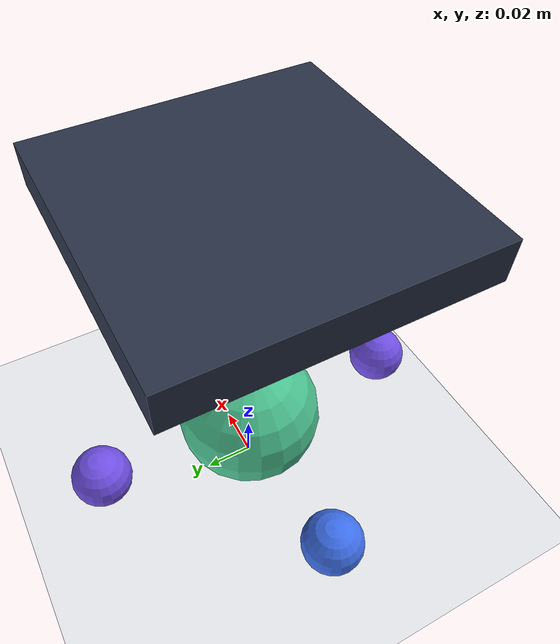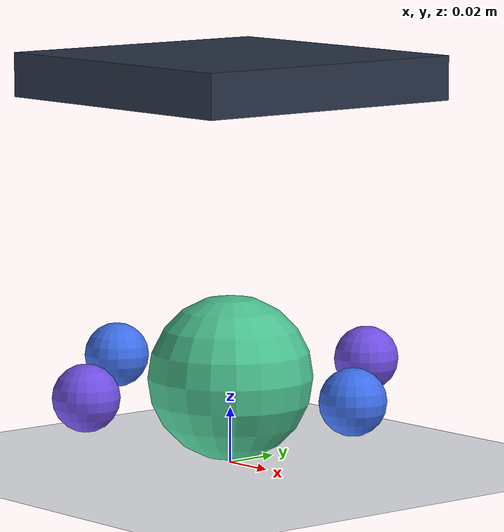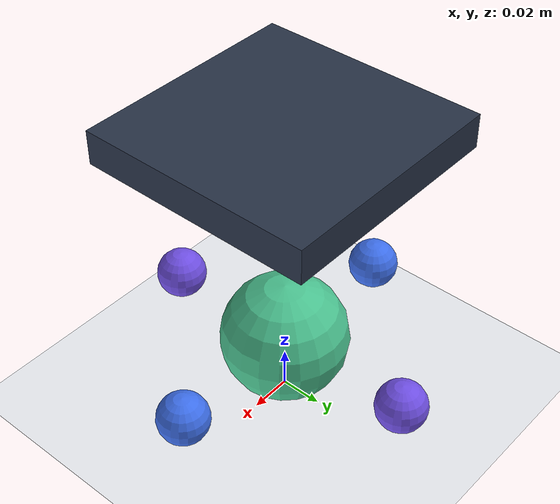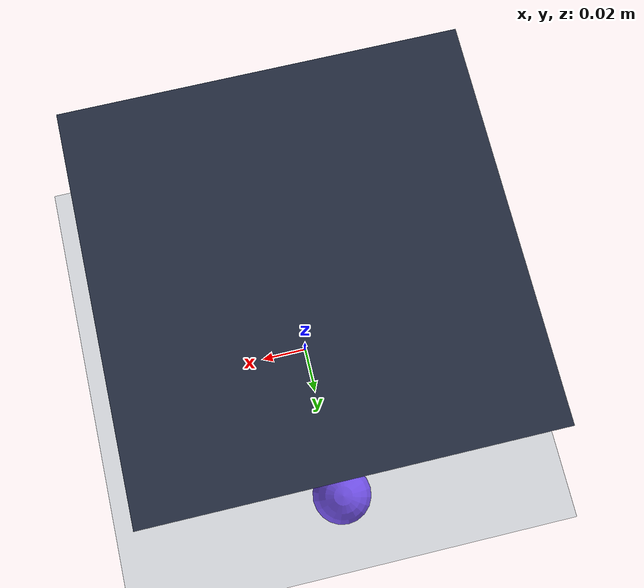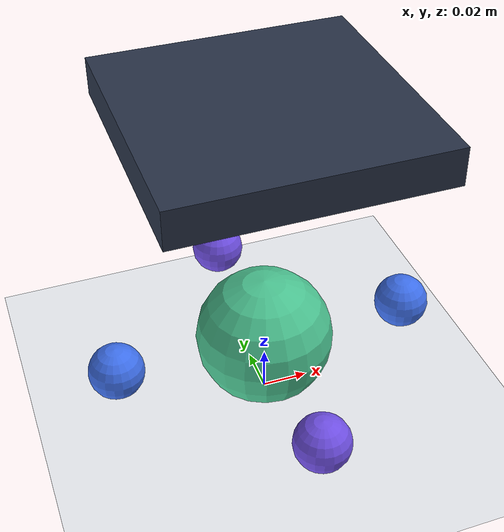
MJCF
<mujoco model="dexterous grasp smoke">
  <compiler angle="radian"/>
  <option timestep="0.002" gravity="0 0 -9.81" integrator="implicitfast" cone="elliptic"/>

  <default>
    <joint damping="1" armature="0.002"/>
    <geom solref="0.004 1" solimp="0.95 0.99 0.001" condim="4" friction="1.0 0.01 0.001"/>
    <position kp="120" kv="8" ctrllimited="true"/>
  </default>

  <worldbody>
    <light pos="0 -0.6 0.8" dir="0 0.5 -1" directional="true"/>
    <geom name="floor" type="plane" size="0.4 0.4 0.02" rgba="0.93 0.94 0.96 1" friction="0.9 0.01 0.001"/>

    <body name="palm" pos="0 0 0.14">
      <joint name="wrist_lift" type="slide" axis="0 0 1" range="0 0.09"/>
      <geom name="palm_geom" type="box" size="0.055 0.055 0.008" rgba="0.16 0.20 0.28 1" contype="0" conaffinity="0"/>

      <body name="finger_left" pos="0.066 0 -0.109">
        <joint name="finger_left_close" type="slide" axis="-1 0 0" range="0 0.034"/>
        <geom name="finger_left_tip" type="sphere" size="0.012" rgba="0.25 0.45 0.95 1"/>
      </body>
      <body name="finger_right" pos="-0.066 0 -0.109">
        <joint name="finger_right_close" type="slide" axis="1 0 0" range="0 0.034"/>
        <geom name="finger_right_tip" type="sphere" size="0.012" rgba="0.25 0.45 0.95 1"/>
      </body>
      <body name="finger_front" pos="0 -0.066 -0.109">
        <joint name="finger_front_close" type="slide" axis="0 1 0" range="0 0.034"/>
        <geom name="finger_front_tip" type="sphere" size="0.012" rgba="0.45 0.32 0.92 1"/>
      </body>
      <body name="finger_back" pos="0 0.066 -0.109">
        <joint name="finger_back_close" type="slide" axis="0 -1 0" range="0 0.034"/>
        <geom name="finger_back_tip" type="sphere" size="0.012" rgba="0.45 0.32 0.92 1"/>
      </body>
    </body>

    <body name="object" pos="0 0 0.031">
      <freejoint/>
      <geom name="object_geom" type="sphere" size="0.03" mass="0.035"
            rgba="0.30 0.78 0.58 1" friction="0.9 0.01 0.001"/>
    </body>
  </worldbody>

  <actuator>
    <position name="wrist_lift_motor" joint="wrist_lift" ctrlrange="0 0.09" kp="180" kv="12"/>
    <position name="finger_left_motor" joint="finger_left_close" ctrlrange="0 0.034"/>
    <position name="finger_right_motor" joint="finger_right_close" ctrlrange="0 0.034"/>
    <position name="finger_front_motor" joint="finger_front_close" ctrlrange="0 0.034"/>
    <position name="finger_back_motor" joint="finger_back_close" ctrlrange="0 0.034"/>
  </actuator>

  <sensor>
    <jointpos name="wrist_height" joint="wrist_lift"/>
    <jointpos name="left_closure" joint="finger_left_close"/>
    <jointpos name="right_closure" joint="finger_right_close"/>
    <jointpos name="front_closure" joint="finger_front_close"/>
    <jointpos name="back_closure" joint="finger_back_close"/>
    <framepos name="object_position" objtype="body" objname="object"/>
  </sensor>
</mujoco>
